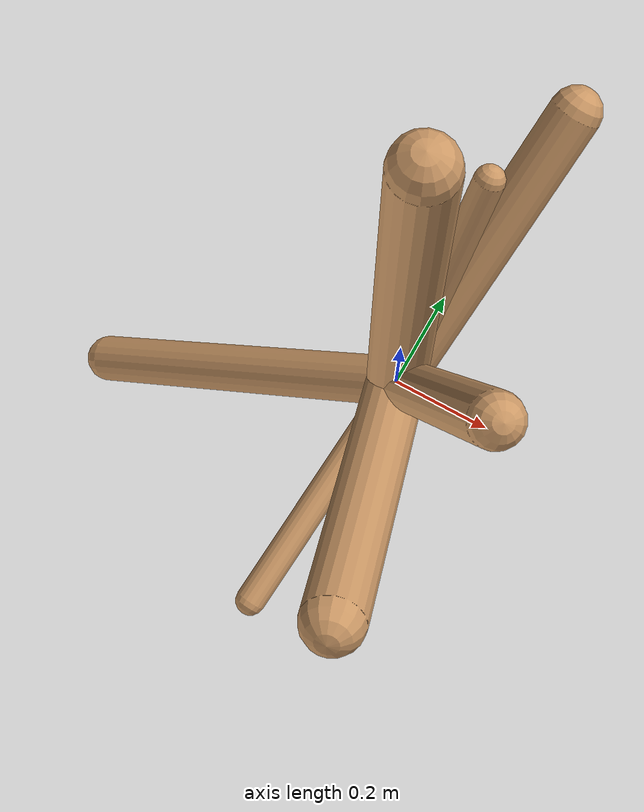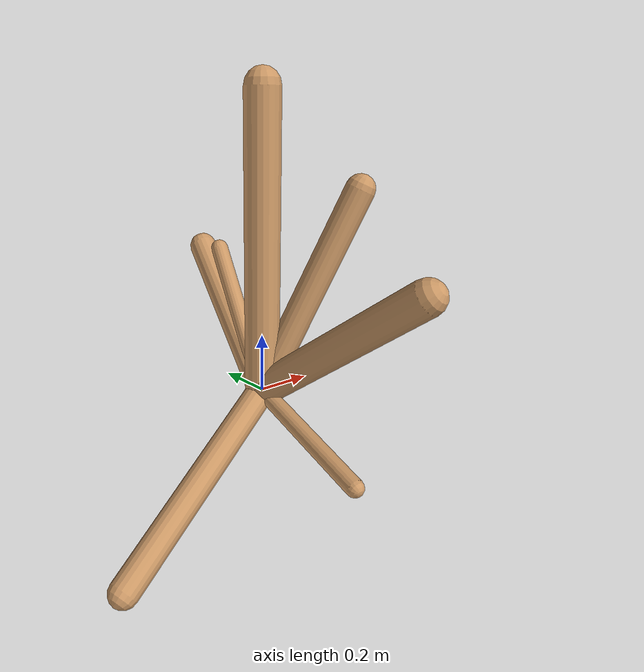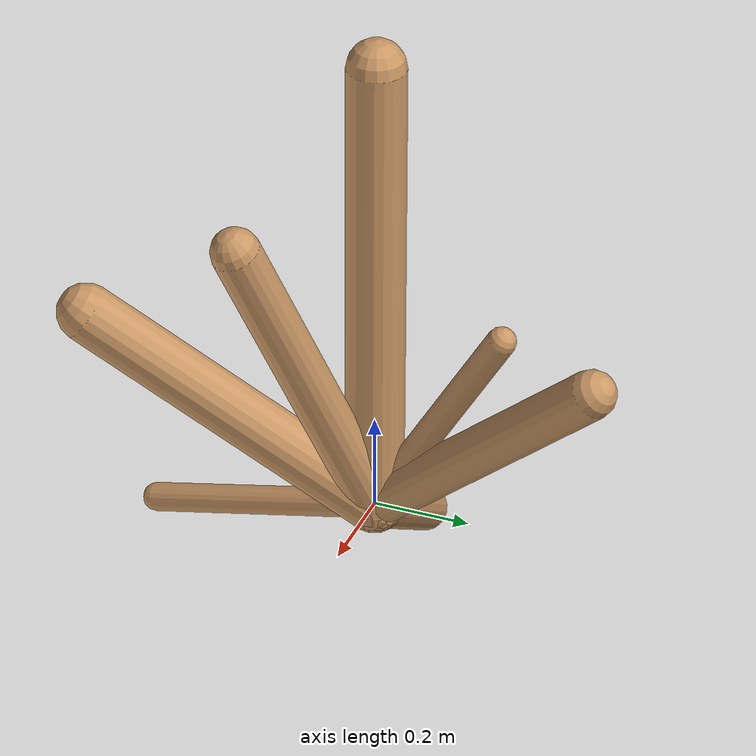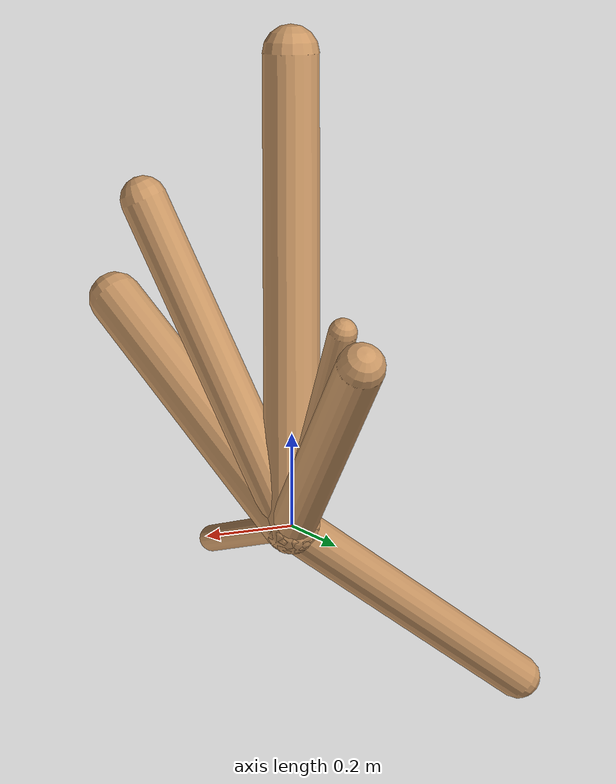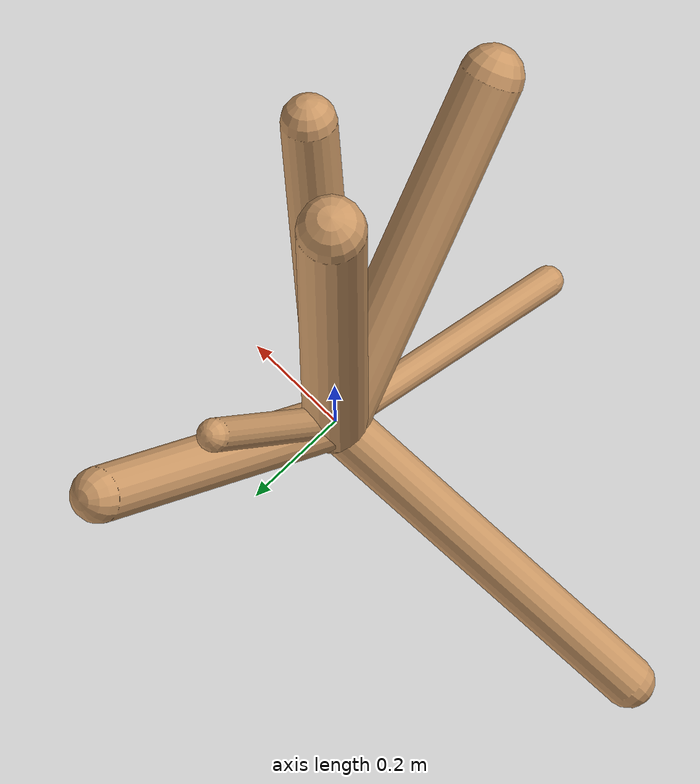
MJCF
<!--
                    joint_number: 6
                    -->
                    <mujoco model="randomrobot">
                        <compiler angle="degree" coordinate="global" inertiafromgeom="true"/>
                        <default>
                        <joint armature="0.01" damping=".1" limited="true"/>
                        <geom conaffinity="0" condim="3" contype="1" density="1000" friction="0.8 .1 .1" rgba="0.8 0.6 .4 1"/>
                        </default>
                        <option integrator="RK4" timestep="0.002"/>
                        <worldbody>
                    <body name='torso' pos='0.00 0.00 0.72'><geom fromto='0 0 0 0.00 0.00 1.00' name='torso_geom' size='0.06' type='capsule'/><inertial mass='0.3'/><body name='L0_D1' pos='0.00 0.00 0.52'><joint axis='0 1 0' name='L0_D1_joint' pos='0 0 0' range='48.11 57.11' type='hinge'/><geom fromto='0 0 0 0.09 0.48 0.43' name='L0_D1_geom' size='0.05' type='capsule'/><inertial mass='0.3'/><body name='L1_D0' pos='0.03 0.15 0.13'><joint axis='1 0 0' name='L1_D0_joint' pos='0 0 0' range='84.56 139.20' type='hinge'/><geom fromto='0 0 0 0.16 -0.55 0.42' name='L1_D0_geom' size='0.06' type='capsule'/><inertial mass='0.3'/></body></body><body name='L2_D1' pos='0.00 0.00 0.01'><joint axis='0 1 0' name='L2_D1_joint' pos='0 0 0' range='131.79 175.61' type='hinge'/><geom fromto='0 0 0 -0.05 -0.50 -0.14' name='L2_D1_geom' size='0.03' type='capsule'/><inertial mass='0.3'/><body name='L3_D0' pos='-0.03 -0.24 -0.07'><joint axis='0 0 1' name='L3_D0_joint' pos='0 0 0' range='31.32 114.80' type='hinge'/><geom fromto='0 0 0 0.25 -0.19 0.69' name='L3_D0_geom' size='0.05' type='capsule'/><inertial mass='0.3'/></body></body><body name='L4_D1' pos='0.00 0.00 0.85'><joint axis='1 0 0' name='L4_D1_joint' pos='0 0 0' range='40.77 140.83' type='hinge'/><geom fromto='0 0 0 0.02 0.27 0.46' name='L4_D1_geom' size='0.03' type='capsule'/><inertial mass='0.3'/><body name='L5_D0' pos='0.02 0.21 0.35'><joint axis='1 0 0' name='L5_D0_joint' pos='0 0 0' range='74.78 167.40' type='hinge'/><geom fromto='0 0 0 -0.64 -0.13 -0.45' name='L5_D0_geom' size='0.05' type='capsule'/><inertial mass='0.3'/></body></body></body>
                        </worldbody>
                    </mujoco>
